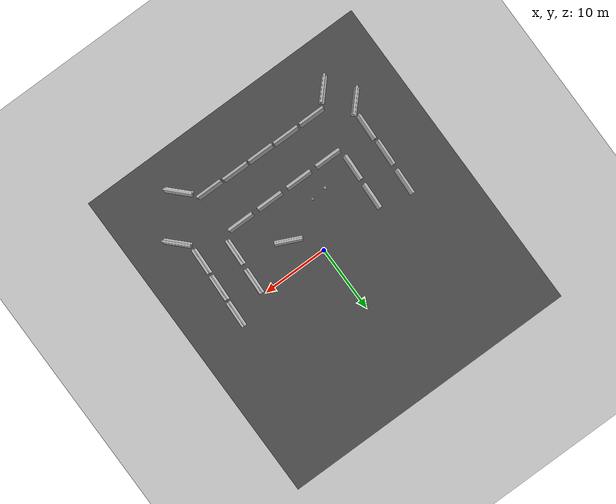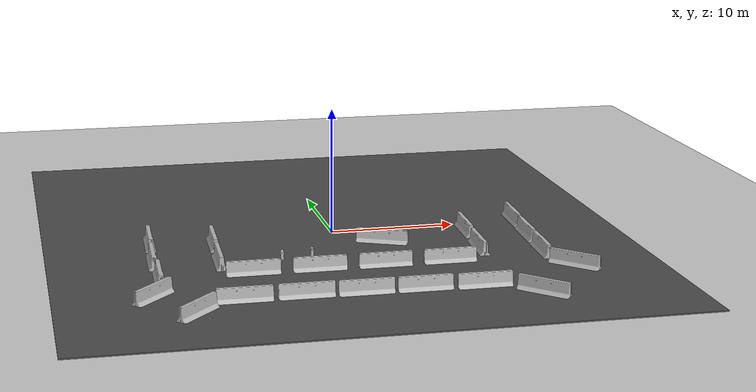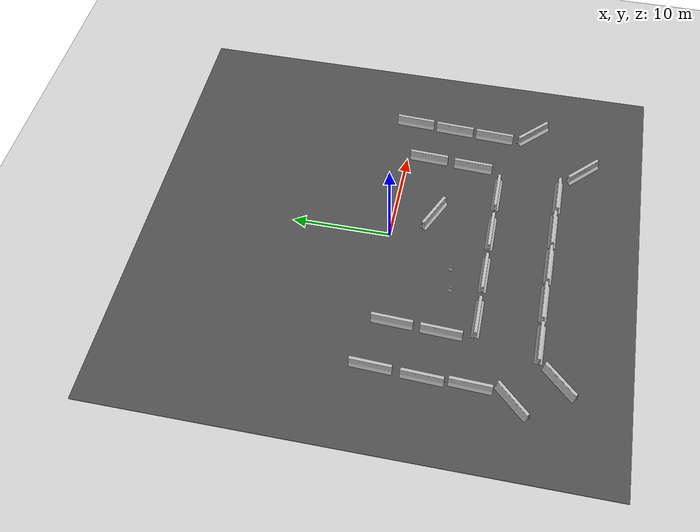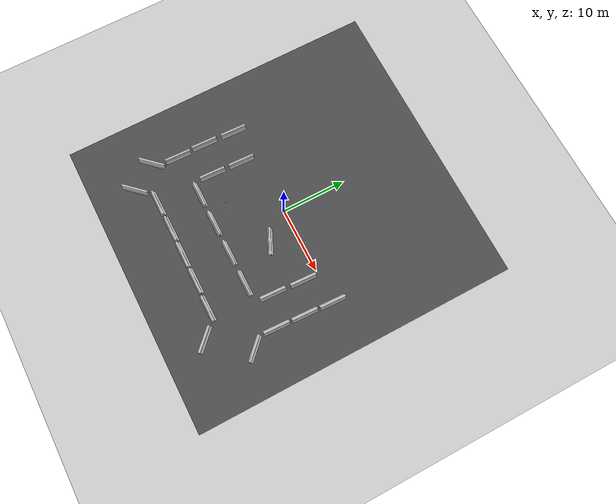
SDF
<sdf version="1.6">
 <world name="default">
  <model name="ground_plane">
   <static>1</static>
   <link name="link">
    <collision name="collision">
     <geometry><plane><normal>0 0 1</normal><size>100 100</size></plane></geometry>
     <surface><friction><ode><mu>100</mu><mu2>50</mu2></ode></friction></surface>
    </collision>
    <visual name="visual">
     <cast_shadows>0</cast_shadows>
     <geometry><plane><normal>0 0 1</normal><size>100 100</size></plane></geometry>
     <material>
      <script><uri>file://media/materials/scripts/gazebo.material</uri><name>Gazebo/Grey</name></script>
     </material>
    </visual>
    <velocity_decay><linear>0</linear><angular>0</angular></velocity_decay>
   </link>
  </model>
  <model name="jersey_barrier">
   <static>1</static>
   <link name="link">
    <visual name="visual">
     <geometry><mesh><uri>model://jersey_barrier/meshes/jersey_barrier.dae</uri></mesh></geometry>
    </visual>
    <collision name="upright">
     <pose>0 0 0.5715 0 -0 0</pose>
     <geometry><box><size>4.06542 0.3063 1.143</size></box></geometry>
    </collision>
    <collision name="base">
     <pose>0 0 0.032258 0 -0 0</pose>
     <geometry><box><size>4.06542 0.8107 0.064516</size></box></geometry>
    </collision>
    <collision name="base2">
     <pose>0 0 0.1 0 -0 0</pose>
     <geometry><box><size>4.06542 0.65 0.1</size></box></geometry>
    </collision>
    <collision name="base3">
     <pose>0 0 0.2 0 -0 0</pose>
     <geometry><box><size>4.06542 0.5 0.1</size></box></geometry>
    </collision>
    <collision name="left-angle">
     <pose>0 -0.224 0.2401 0.9 -0 0</pose>
     <geometry><box><size>4.06542 0.5 0.064516</size></box></geometry>
    </collision>
    <collision name="right-angle">
     <pose>0 0.224 0.2401 -0.9 0 0</pose>
     <geometry><box><size>4.06542 0.5 0.064516</size></box></geometry>
    </collision>
    <velocity_decay><linear>0</linear><angular>0</angular></velocity_decay>
   </link>
   <pose>-8 -10 0 0 -0 0</pose>
  </model>
  <model name="jersey_barrier_0">
   <static>1</static>
   <link name="link">
    <visual name="visual">
     <geometry><mesh><uri>model://jersey_barrier/meshes/jersey_barrier.dae</uri></mesh></geometry>
    </visual>
    <collision name="upright">
     <pose>0 0 0.5715 0 -0 0</pose>
     <geometry><box><size>4.06542 0.3063 1.143</size></box></geometry>
    </collision>
    <collision name="base">
     <pose>0 0 0.032258 0 -0 0</pose>
     <geometry><box><size>4.06542 0.8107 0.064516</size></box></geometry>
    </collision>
    <collision name="base2">
     <pose>0 0 0.1 0 -0 0</pose>
     <geometry><box><size>4.06542 0.65 0.1</size></box></geometry>
    </collision>
    <collision name="base3">
     <pose>0 0 0.2 0 -0 0</pose>
     <geometry><box><size>4.06542 0.5 0.1</size></box></geometry>
    </collision>
    <collision name="left-angle">
     <pose>0 -0.224 0.2401 0.9 -0 0</pose>
     <geometry><box><size>4.06542 0.5 0.064516</size></box></geometry>
    </collision>
    <collision name="right-angle">
     <pose>0 0.224 0.2401 -0.9 0 0</pose>
     <geometry><box><size>4.06542 0.5 0.064516</size></box></geometry>
    </collision>
    <velocity_decay><linear>0</linear><angular>0</angular></velocity_decay>
   </link>
   <pose>-3 -10 0 0 -0 0</pose>
  </model>
  <model name="jersey_barrier_1">
   <static>1</static>
   <link name="link">
    <visual name="visual">
     <geometry><mesh><uri>model://jersey_barrier/meshes/jersey_barrier.dae</uri></mesh></geometry>
    </visual>
    <collision name="upright">
     <pose>0 0 0.5715 0 -0 0</pose>
     <geometry><box><size>4.06542 0.3063 1.143</size></box></geometry>
    </collision>
    <collision name="base">
     <pose>0 0 0.032258 0 -0 0</pose>
     <geometry><box><size>4.06542 0.8107 0.064516</size></box></geometry>
    </collision>
    <collision name="base2">
     <pose>0 0 0.1 0 -0 0</pose>
     <geometry><box><size>4.06542 0.65 0.1</size></box></geometry>
    </collision>
    <collision name="base3">
     <pose>0 0 0.2 0 -0 0</pose>
     <geometry><box><size>4.06542 0.5 0.1</size></box></geometry>
    </collision>
    <collision name="left-angle">
     <pose>0 -0.224 0.2401 0.9 -0 0</pose>
     <geometry><box><size>4.06542 0.5 0.064516</size></box></geometry>
    </collision>
    <collision name="right-angle">
     <pose>0 0.224 0.2401 -0.9 0 0</pose>
     <geometry><box><size>4.06542 0.5 0.064516</size></box></geometry>
    </collision>
    <velocity_decay><linear>0</linear><angular>0</angular></velocity_decay>
   </link>
   <pose>2 -10 0 0 -0 0</pose>
  </model>
  <model name="jersey_barrier_2">
   <static>1</static>
   <link name="link">
    <visual name="visual">
     <geometry><mesh><uri>model://jersey_barrier/meshes/jersey_barrier.dae</uri></mesh></geometry>
    </visual>
    <collision name="upright">
     <pose>0 0 0.5715 0 -0 0</pose>
     <geometry><box><size>4.06542 0.3063 1.143</size></box></geometry>
    </collision>
    <collision name="base">
     <pose>0 0 0.032258 0 -0 0</pose>
     <geometry><box><size>4.06542 0.8107 0.064516</size></box></geometry>
    </collision>
    <collision name="base2">
     <pose>0 0 0.1 0 -0 0</pose>
     <geometry><box><size>4.06542 0.65 0.1</size></box></geometry>
    </collision>
    <collision name="base3">
     <pose>0 0 0.2 0 -0 0</pose>
     <geometry><box><size>4.06542 0.5 0.1</size></box></geometry>
    </collision>
    <collision name="left-angle">
     <pose>0 -0.224 0.2401 0.9 -0 0</pose>
     <geometry><box><size>4.06542 0.5 0.064516</size></box></geometry>
    </collision>
    <collision name="right-angle">
     <pose>0 0.224 0.2401 -0.9 0 0</pose>
     <geometry><box><size>4.06542 0.5 0.064516</size></box></geometry>
    </collision>
    <velocity_decay><linear>0</linear><angular>0</angular></velocity_decay>
   </link>
   <pose>7 -10 0 0 -0 0</pose>
  </model>
  <model name="asphalt_plane">
   <static>1</static>
   <link name="link">
    <collision name="collision"><geometry><box><size>45.6368 49.6066 0.1</size></box></geometry></collision>
    <visual name="visual">
     <cast_shadows>0</cast_shadows>
     <geometry><box><size>45.6368 49.6066 0.1</size></box></geometry>
     <material>
      <script>
       <uri>model://asphalt_plane/materials/scripts</uri>
       <uri>model://asphalt_plane/materials/textures</uri>
       <name>vrc/asphalt</name>
      </script>
     </material>
    </visual>
    <velocity_decay><linear>0</linear><angular>0</angular></velocity_decay>
   </link>
   <pose>-0.123803 0.022176 0 0 -0 0</pose>
  </model>
  <model name="jersey_barrier_7">
   <static>1</static>
   <link name="link">
    <visual name="visual">
     <geometry><mesh><uri>model://jersey_barrier/meshes/jersey_barrier.dae</uri></mesh></geometry>
    </visual>
    <collision name="upright">
     <pose>0 0 0.5715 0 -0 0</pose>
     <geometry><box><size>4.06542 0.3063 1.143</size></box></geometry>
    </collision>
    <collision name="base">
     <pose>0 0 0.032258 0 -0 0</pose>
     <geometry><box><size>4.06542 0.8107 0.064516</size></box></geometry>
    </collision>
    <collision name="base2">
     <pose>0 0 0.1 0 -0 0</pose>
     <geometry><box><size>4.06542 0.65 0.1</size></box></geometry>
    </collision>
    <collision name="base3">
     <pose>0 0 0.2 0 -0 0</pose>
     <geometry><box><size>4.06542 0.5 0.1</size></box></geometry>
    </collision>
    <collision name="left-angle">
     <pose>0 -0.224 0.2401 0.9 -0 0</pose>
     <geometry><box><size>4.06542 0.5 0.064516</size></box></geometry>
    </collision>
    <collision name="right-angle">
     <pose>0 0.224 0.2401 -0.9 0 0</pose>
     <geometry><box><size>4.06542 0.5 0.064516</size></box></geometry>
    </collision>
   </link>
   <pose>10.1442 -7.0827 0 0 -0 1.5316</pose>
  </model>
  <model name="jersey_barrier_7_clone">
   <static>1</static>
   <link name="link">
    <visual name="visual">
     <geometry><mesh><uri>model://jersey_barrier/meshes/jersey_barrier.dae</uri></mesh></geometry>
    </visual>
    <collision name="upright">
     <pose>0 0 0.5715 0 -0 0</pose>
     <geometry><box><size>4.06542 0.3063 1.143</size></box></geometry>
    </collision>
    <collision name="base">
     <pose>0 0 0.032258 0 -0 0</pose>
     <geometry><box><size>4.06542 0.8107 0.064516</size></box></geometry>
    </collision>
    <collision name="base2">
     <pose>0 0 0.1 0 -0 0</pose>
     <geometry><box><size>4.06542 0.65 0.1</size></box></geometry>
    </collision>
    <collision name="base3">
     <pose>0 0 0.2 0 -0 0</pose>
     <geometry><box><size>4.06542 0.5 0.1</size></box></geometry>
    </collision>
    <collision name="left-angle">
     <pose>0 -0.224 0.2401 0.9 -0 0</pose>
     <geometry><box><size>4.06542 0.5 0.064516</size></box></geometry>
    </collision>
    <collision name="right-angle">
     <pose>0 0.224 0.2401 -0.9 0 0</pose>
     <geometry><box><size>4.06542 0.5 0.064516</size></box></geometry>
    </collision>
   </link>
   <pose>10.4384 -2.30893 0 0 -0 1.5316</pose>
  </model>
  <model name="jersey_barrier_7_clone_1_clone_0">
   <static>1</static>
   <link name="link">
    <visual name="visual">
     <geometry><mesh><uri>model://jersey_barrier/meshes/jersey_barrier.dae</uri></mesh></geometry>
    </visual>
    <collision name="upright">
     <pose>0 0 0.5715 0 -0 0</pose>
     <geometry><box><size>4.06542 0.3063 1.143</size></box></geometry>
    </collision>
    <collision name="base">
     <pose>0 0 0.032258 0 -0 0</pose>
     <geometry><box><size>4.06542 0.8107 0.064516</size></box></geometry>
    </collision>
    <collision name="base2">
     <pose>0 0 0.1 0 -0 0</pose>
     <geometry><box><size>4.06542 0.65 0.1</size></box></geometry>
    </collision>
    <collision name="base3">
     <pose>0 0 0.2 0 -0 0</pose>
     <geometry><box><size>4.06542 0.5 0.1</size></box></geometry>
    </collision>
    <collision name="left-angle">
     <pose>0 -0.224 0.2401 0.9 -0 0</pose>
     <geometry><box><size>4.06542 0.5 0.064516</size></box></geometry>
    </collision>
    <collision name="right-angle">
     <pose>0 0.224 0.2401 -0.9 0 0</pose>
     <geometry><box><size>4.06542 0.5 0.064516</size></box></geometry>
    </collision>
   </link>
   <pose>-10.0917 -6.86582 0 0 -0 1.5316</pose>
  </model>
  <model name="jersey_barrier_7_clone_1_clone_3">
   <static>1</static>
   <link name="link">
    <visual name="visual">
     <geometry><mesh><uri>model://jersey_barrier/meshes/jersey_barrier.dae</uri></mesh></geometry>
    </visual>
    <collision name="upright">
     <pose>0 0 0.5715 0 -0 0</pose>
     <geometry><box><size>4.06542 0.3063 1.143</size></box></geometry>
    </collision>
    <collision name="base">
     <pose>0 0 0.032258 0 -0 0</pose>
     <geometry><box><size>4.06542 0.8107 0.064516</size></box></geometry>
    </collision>
    <collision name="base2">
     <pose>0 0 0.1 0 -0 0</pose>
     <geometry><box><size>4.06542 0.65 0.1</size></box></geometry>
    </collision>
    <collision name="base3">
     <pose>0 0 0.2 0 -0 0</pose>
     <geometry><box><size>4.06542 0.5 0.1</size></box></geometry>
    </collision>
    <collision name="left-angle">
     <pose>0 -0.224 0.2401 0.9 -0 0</pose>
     <geometry><box><size>4.06542 0.5 0.064516</size></box></geometry>
    </collision>
    <collision name="right-angle">
     <pose>0 0.224 0.2401 -0.9 0 0</pose>
     <geometry><box><size>4.06542 0.5 0.064516</size></box></geometry>
    </collision>
   </link>
   <pose>-14.7486 -1.06823 0 0 -0 1.5316</pose>
  </model>
  <model name="jersey_barrier_7_clone_1_clone_4">
   <static>1</static>
   <link name="link">
    <visual name="visual">
     <geometry><mesh><uri>model://jersey_barrier/meshes/jersey_barrier.dae</uri></mesh></geometry>
    </visual>
    <collision name="upright">
     <pose>0 0 0.5715 0 -0 0</pose>
     <geometry><box><size>4.06542 0.3063 1.143</size></box></geometry>
    </collision>
    <collision name="base">
     <pose>0 0 0.032258 0 -0 0</pose>
     <geometry><box><size>4.06542 0.8107 0.064516</size></box></geometry>
    </collision>
    <collision name="base2">
     <pose>0 0 0.1 0 -0 0</pose>
     <geometry><box><size>4.06542 0.65 0.1</size></box></geometry>
    </collision>
    <collision name="base3">
     <pose>0 0 0.2 0 -0 0</pose>
     <geometry><box><size>4.06542 0.5 0.1</size></box></geometry>
    </collision>
    <collision name="left-angle">
     <pose>0 -0.224 0.2401 0.9 -0 0</pose>
     <geometry><box><size>4.06542 0.5 0.064516</size></box></geometry>
    </collision>
    <collision name="right-angle">
     <pose>0 0.224 0.2401 -0.9 0 0</pose>
     <geometry><box><size>4.06542 0.5 0.064516</size></box></geometry>
    </collision>
   </link>
   <pose>-14.9922 -5.87235 0 0 -0 1.5316</pose>
  </model>
  <model name="jersey_barrier_7_clone_1_clone_5">
   <static>1</static>
   <link name="link">
    <visual name="visual">
     <geometry><mesh><uri>model://jersey_barrier/meshes/jersey_barrier.dae</uri></mesh></geometry>
    </visual>
    <collision name="upright">
     <pose>0 0 0.5715 0 -0 0</pose>
     <geometry><box><size>4.06542 0.3063 1.143</size></box></geometry>
    </collision>
    <collision name="base">
     <pose>0 0 0.032258 0 -0 0</pose>
     <geometry><box><size>4.06542 0.8107 0.064516</size></box></geometry>
    </collision>
    <collision name="base2">
     <pose>0 0 0.1 0 -0 0</pose>
     <geometry><box><size>4.06542 0.65 0.1</size></box></geometry>
    </collision>
    <collision name="base3">
     <pose>0 0 0.2 0 -0 0</pose>
     <geometry><box><size>4.06542 0.5 0.1</size></box></geometry>
    </collision>
    <collision name="left-angle">
     <pose>0 -0.224 0.2401 0.9 -0 0</pose>
     <geometry><box><size>4.06542 0.5 0.064516</size></box></geometry>
    </collision>
    <collision name="right-angle">
     <pose>0 0.224 0.2401 -0.9 0 0</pose>
     <geometry><box><size>4.06542 0.5 0.064516</size></box></geometry>
    </collision>
   </link>
   <pose>-14.959 -10.2795 0 0 -0 1.5316</pose>
  </model>
  <model name="jersey_barrier_7_clone_2">
   <static>1</static>
   <link name="link">
    <visual name="visual">
     <geometry><mesh><uri>model://jersey_barrier/meshes/jersey_barrier.dae</uri></mesh></geometry>
    </visual>
    <collision name="upright">
     <pose>0 0 0.5715 0 -0 0</pose>
     <geometry><box><size>4.06542 0.3063 1.143</size></box></geometry>
    </collision>
    <collision name="base">
     <pose>0 0 0.032258 0 -0 0</pose>
     <geometry><box><size>4.06542 0.8107 0.064516</size></box></geometry>
    </collision>
    <collision name="base2">
     <pose>0 0 0.1 0 -0 0</pose>
     <geometry><box><size>4.06542 0.65 0.1</size></box></geometry>
    </collision>
    <collision name="base3">
     <pose>0 0 0.2 0 -0 0</pose>
     <geometry><box><size>4.06542 0.5 0.1</size></box></geometry>
    </collision>
    <collision name="left-angle">
     <pose>0 -0.224 0.2401 0.9 -0 0</pose>
     <geometry><box><size>4.06542 0.5 0.064516</size></box></geometry>
    </collision>
    <collision name="right-angle">
     <pose>0 0.224 0.2401 -0.9 0 0</pose>
     <geometry><box><size>4.06542 0.5 0.064516</size></box></geometry>
    </collision>
   </link>
   <pose>14.6825 -8.81262 0 0 -0 1.5316</pose>
  </model>
  <model name="jersey_barrier_7_clone_3">
   <static>1</static>
   <link name="link">
    <visual name="visual">
     <geometry><mesh><uri>model://jersey_barrier/meshes/jersey_barrier.dae</uri></mesh></geometry>
    </visual>
    <collision name="upright">
     <pose>0 0 0.5715 0 -0 0</pose>
     <geometry><box><size>4.06542 0.3063 1.143</size></box></geometry>
    </collision>
    <collision name="base">
     <pose>0 0 0.032258 0 -0 0</pose>
     <geometry><box><size>4.06542 0.8107 0.064516</size></box></geometry>
    </collision>
    <collision name="base2">
     <pose>0 0 0.1 0 -0 0</pose>
     <geometry><box><size>4.06542 0.65 0.1</size></box></geometry>
    </collision>
    <collision name="base3">
     <pose>0 0 0.2 0 -0 0</pose>
     <geometry><box><size>4.06542 0.5 0.1</size></box></geometry>
    </collision>
    <collision name="left-angle">
     <pose>0 -0.224 0.2401 0.9 -0 0</pose>
     <geometry><box><size>4.06542 0.5 0.064516</size></box></geometry>
    </collision>
    <collision name="right-angle">
     <pose>0 0.224 0.2401 -0.9 0 0</pose>
     <geometry><box><size>4.06542 0.5 0.064516</size></box></geometry>
    </collision>
   </link>
   <pose>14.8943 -4.42382 0 0 -0 1.5316</pose>
  </model>
  <model name="jersey_barrier_7_clone_4">
   <static>1</static>
   <link name="link">
    <visual name="visual">
     <geometry><mesh><uri>model://jersey_barrier/meshes/jersey_barrier.dae</uri></mesh></geometry>
    </visual>
    <collision name="upright">
     <pose>0 0 0.5715 0 -0 0</pose>
     <geometry><box><size>4.06542 0.3063 1.143</size></box></geometry>
    </collision>
    <collision name="base">
     <pose>0 0 0.032258 0 -0 0</pose>
     <geometry><box><size>4.06542 0.8107 0.064516</size></box></geometry>
    </collision>
    <collision name="base2">
     <pose>0 0 0.1 0 -0 0</pose>
     <geometry><box><size>4.06542 0.65 0.1</size></box></geometry>
    </collision>
    <collision name="base3">
     <pose>0 0 0.2 0 -0 0</pose>
     <geometry><box><size>4.06542 0.5 0.1</size></box></geometry>
    </collision>
    <collision name="left-angle">
     <pose>0 -0.224 0.2401 0.9 -0 0</pose>
     <geometry><box><size>4.06542 0.5 0.064516</size></box></geometry>
    </collision>
    <collision name="right-angle">
     <pose>0 0.224 0.2401 -0.9 0 0</pose>
     <geometry><box><size>4.06542 0.5 0.064516</size></box></geometry>
    </collision>
   </link>
   <pose>15.1542 -0.062521 0 0 -0 1.5316</pose>
  </model>
  <model name="jersey_barrier_clone">
   <static>1</static>
   <link name="link">
    <visual name="visual">
     <geometry><mesh><uri>model://jersey_barrier/meshes/jersey_barrier.dae</uri></mesh></geometry>
    </visual>
    <collision name="upright">
     <pose>0 0 0.5715 0 -0 0</pose>
     <geometry><box><size>4.06542 0.3063 1.143</size></box></geometry>
    </collision>
    <collision name="base">
     <pose>0 0 0.032258 0 -0 0</pose>
     <geometry><box><size>4.06542 0.8107 0.064516</size></box></geometry>
    </collision>
    <collision name="base2">
     <pose>0 0 0.1 0 -0 0</pose>
     <geometry><box><size>4.06542 0.65 0.1</size></box></geometry>
    </collision>
    <collision name="base3">
     <pose>0 0 0.2 0 -0 0</pose>
     <geometry><box><size>4.06542 0.5 0.1</size></box></geometry>
    </collision>
    <collision name="left-angle">
     <pose>0 -0.224 0.2401 0.9 -0 0</pose>
     <geometry><box><size>4.06542 0.5 0.064516</size></box></geometry>
    </collision>
    <collision name="right-angle">
     <pose>0 0.224 0.2401 -0.9 0 0</pose>
     <geometry><box><size>4.06542 0.5 0.064516</size></box></geometry>
    </collision>
    <velocity_decay><linear>0</linear><angular>0</angular></velocity_decay>
   </link>
   <pose>-9.60671 -16.051 0 0 -0 0</pose>
  </model>
  <model name="jersey_barrier_clone_0">
   <static>1</static>
   <link name="link">
    <visual name="visual">
     <geometry><mesh><uri>model://jersey_barrier/meshes/jersey_barrier.dae</uri></mesh></geometry>
    </visual>
    <collision name="upright">
     <pose>0 0 0.5715 0 -0 0</pose>
     <geometry><box><size>4.06542 0.3063 1.143</size></box></geometry>
    </collision>
    <collision name="base">
     <pose>0 0 0.032258 0 -0 0</pose>
     <geometry><box><size>4.06542 0.8107 0.064516</size></box></geometry>
    </collision>
    <collision name="base2">
     <pose>0 0 0.1 0 -0 0</pose>
     <geometry><box><size>4.06542 0.65 0.1</size></box></geometry>
    </collision>
    <collision name="base3">
     <pose>0 0 0.2 0 -0 0</pose>
     <geometry><box><size>4.06542 0.5 0.1</size></box></geometry>
    </collision>
    <collision name="left-angle">
     <pose>0 -0.224 0.2401 0.9 -0 0</pose>
     <geometry><box><size>4.06542 0.5 0.064516</size></box></geometry>
    </collision>
    <collision name="right-angle">
     <pose>0 0.224 0.2401 -0.9 0 0</pose>
     <geometry><box><size>4.06542 0.5 0.064516</size></box></geometry>
    </collision>
    <velocity_decay><linear>0</linear><angular>0</angular></velocity_decay>
   </link>
   <pose>-5.17894 -16.0195 0 0 -0 0</pose>
  </model>
  <model name="jersey_barrier_clone_1">
   <static>1</static>
   <link name="link">
    <visual name="visual">
     <geometry><mesh><uri>model://jersey_barrier/meshes/jersey_barrier.dae</uri></mesh></geometry>
    </visual>
    <collision name="upright">
     <pose>0 0 0.5715 0 -0 0</pose>
     <geometry><box><size>4.06542 0.3063 1.143</size></box></geometry>
    </collision>
    <collision name="base">
     <pose>0 0 0.032258 0 -0 0</pose>
     <geometry><box><size>4.06542 0.8107 0.064516</size></box></geometry>
    </collision>
    <collision name="base2">
     <pose>0 0 0.1 0 -0 0</pose>
     <geometry><box><size>4.06542 0.65 0.1</size></box></geometry>
    </collision>
    <collision name="base3">
     <pose>0 0 0.2 0 -0 0</pose>
     <geometry><box><size>4.06542 0.5 0.1</size></box></geometry>
    </collision>
    <collision name="left-angle">
     <pose>0 -0.224 0.2401 0.9 -0 0</pose>
     <geometry><box><size>4.06542 0.5 0.064516</size></box></geometry>
    </collision>
    <collision name="right-angle">
     <pose>0 0.224 0.2401 -0.9 0 0</pose>
     <geometry><box><size>4.06542 0.5 0.064516</size></box></geometry>
    </collision>
    <velocity_decay><linear>0</linear><angular>0</angular></velocity_decay>
   </link>
   <pose>-0.872675 -16.1021 0 0 -0 0</pose>
  </model>
  <model name="jersey_barrier_clone_2">
   <static>1</static>
   <link name="link">
    <visual name="visual">
     <geometry><mesh><uri>model://jersey_barrier/meshes/jersey_barrier.dae</uri></mesh></geometry>
    </visual>
    <collision name="upright">
     <pose>0 0 0.5715 0 -0 0</pose>
     <geometry><box><size>4.06542 0.3063 1.143</size></box></geometry>
    </collision>
    <collision name="base">
     <pose>0 0 0.032258 0 -0 0</pose>
     <geometry><box><size>4.06542 0.8107 0.064516</size></box></geometry>
    </collision>
    <collision name="base2">
     <pose>0 0 0.1 0 -0 0</pose>
     <geometry><box><size>4.06542 0.65 0.1</size></box></geometry>
    </collision>
    <collision name="base3">
     <pose>0 0 0.2 0 -0 0</pose>
     <geometry><box><size>4.06542 0.5 0.1</size></box></geometry>
    </collision>
    <collision name="left-angle">
     <pose>0 -0.224 0.2401 0.9 -0 0</pose>
     <geometry><box><size>4.06542 0.5 0.064516</size></box></geometry>
    </collision>
    <collision name="right-angle">
     <pose>0 0.224 0.2401 -0.9 0 0</pose>
     <geometry><box><size>4.06542 0.5 0.064516</size></box></geometry>
    </collision>
    <velocity_decay><linear>0</linear><angular>0</angular></velocity_decay>
   </link>
   <pose>3.43298 -16.132 0 0 -0 0</pose>
  </model>
  <model name="jersey_barrier_clone_3">
   <static>1</static>
   <link name="link">
    <visual name="visual">
     <geometry><mesh><uri>model://jersey_barrier/meshes/jersey_barrier.dae</uri></mesh></geometry>
    </visual>
    <collision name="upright">
     <pose>0 0 0.5715 0 -0 0</pose>
     <geometry><box><size>4.06542 0.3063 1.143</size></box></geometry>
    </collision>
    <collision name="base">
     <pose>0 0 0.032258 0 -0 0</pose>
     <geometry><box><size>4.06542 0.8107 0.064516</size></box></geometry>
    </collision>
    <collision name="base2">
     <pose>0 0 0.1 0 -0 0</pose>
     <geometry><box><size>4.06542 0.65 0.1</size></box></geometry>
    </collision>
    <collision name="base3">
     <pose>0 0 0.2 0 -0 0</pose>
     <geometry><box><size>4.06542 0.5 0.1</size></box></geometry>
    </collision>
    <collision name="left-angle">
     <pose>0 -0.224 0.2401 0.9 -0 0</pose>
     <geometry><box><size>4.06542 0.5 0.064516</size></box></geometry>
    </collision>
    <collision name="right-angle">
     <pose>0 0.224 0.2401 -0.9 0 0</pose>
     <geometry><box><size>4.06542 0.5 0.064516</size></box></geometry>
    </collision>
    <velocity_decay><linear>0</linear><angular>0</angular></velocity_decay>
   </link>
   <pose>7.80452 -16.2737 0 0 -0 0</pose>
  </model>
  <model name="jersey_barrier_clone_4">
   <static>1</static>
   <link name="link">
    <visual name="visual">
     <geometry><mesh><uri>model://jersey_barrier/meshes/jersey_barrier.dae</uri></mesh></geometry>
    </visual>
    <collision name="upright">
     <pose>0 0 0.5715 0 -0 0</pose>
     <geometry><box><size>4.06542 0.3063 1.143</size></box></geometry>
    </collision>
    <collision name="base">
     <pose>0 0 0.032258 0 -0 0</pose>
     <geometry><box><size>4.06542 0.8107 0.064516</size></box></geometry>
    </collision>
    <collision name="base2">
     <pose>0 0 0.1 0 -0 0</pose>
     <geometry><box><size>4.06542 0.65 0.1</size></box></geometry>
    </collision>
    <collision name="base3">
     <pose>0 0 0.2 0 -0 0</pose>
     <geometry><box><size>4.06542 0.5 0.1</size></box></geometry>
    </collision>
    <collision name="left-angle">
     <pose>0 -0.224 0.2401 0.9 -0 0</pose>
     <geometry><box><size>4.06542 0.5 0.064516</size></box></geometry>
    </collision>
    <collision name="right-angle">
     <pose>0 0.224 0.2401 -0.9 0 0</pose>
     <geometry><box><size>4.06542 0.5 0.064516</size></box></geometry>
    </collision>
    <velocity_decay><linear>0</linear><angular>0</angular></velocity_decay>
   </link>
   <pose>11.4908 -18.5483 0 0 0 -0.792377</pose>
  </model>
  <model name="jersey_barrier_clone_4_clone">
   <static>1</static>
   <link name="link">
    <visual name="visual">
     <geometry><mesh><uri>model://jersey_barrier/meshes/jersey_barrier.dae</uri></mesh></geometry>
    </visual>
    <collision name="upright">
     <pose>0 0 0.5715 0 -0 0</pose>
     <geometry><box><size>4.06542 0.3063 1.143</size></box></geometry>
    </collision>
    <collision name="base">
     <pose>0 0 0.032258 0 -0 0</pose>
     <geometry><box><size>4.06542 0.8107 0.064516</size></box></geometry>
    </collision>
    <collision name="base2">
     <pose>0 0 0.1 0 -0 0</pose>
     <geometry><box><size>4.06542 0.65 0.1</size></box></geometry>
    </collision>
    <collision name="base3">
     <pose>0 0 0.2 0 -0 0</pose>
     <geometry><box><size>4.06542 0.5 0.1</size></box></geometry>
    </collision>
    <collision name="left-angle">
     <pose>0 -0.224 0.2401 0.9 -0 0</pose>
     <geometry><box><size>4.06542 0.5 0.064516</size></box></geometry>
    </collision>
    <collision name="right-angle">
     <pose>0 0.224 0.2401 -0.9 0 0</pose>
     <geometry><box><size>4.06542 0.5 0.064516</size></box></geometry>
    </collision>
    <velocity_decay><linear>0</linear><angular>0</angular></velocity_decay>
   </link>
   <pose>15.8712 -12.8663 0 0 0 -0.792377</pose>
  </model>
  <model name="jersey_barrier_clone_4_clone_2">
   <static>1</static>
   <link name="link">
    <visual name="visual">
     <geometry><mesh><uri>model://jersey_barrier/meshes/jersey_barrier.dae</uri></mesh></geometry>
    </visual>
    <collision name="upright">
     <pose>0 0 0.5715 0 -0 0</pose>
     <geometry><box><size>4.06542 0.3063 1.143</size></box></geometry>
    </collision>
    <collision name="base">
     <pose>0 0 0.032258 0 -0 0</pose>
     <geometry><box><size>4.06542 0.8107 0.064516</size></box></geometry>
    </collision>
    <collision name="base2">
     <pose>0 0 0.1 0 -0 0</pose>
     <geometry><box><size>4.06542 0.65 0.1</size></box></geometry>
    </collision>
    <collision name="base3">
     <pose>0 0 0.2 0 -0 0</pose>
     <geometry><box><size>4.06542 0.5 0.1</size></box></geometry>
    </collision>
    <collision name="left-angle">
     <pose>0 -0.224 0.2401 0.9 -0 0</pose>
     <geometry><box><size>4.06542 0.5 0.064516</size></box></geometry>
    </collision>
    <collision name="right-angle">
     <pose>0 0.224 0.2401 -0.9 0 0</pose>
     <geometry><box><size>4.06542 0.5 0.064516</size></box></geometry>
    </collision>
    <velocity_decay><linear>0</linear><angular>0</angular></velocity_decay>
   </link>
   <pose>-15.8045 -14.1655 0 0 -0 0.826051</pose>
  </model>
  <model name="jersey_barrier_clone_4_clone_2_clone">
   <static>1</static>
   <link name="link">
    <visual name="visual">
     <geometry><mesh><uri>model://jersey_barrier/meshes/jersey_barrier.dae</uri></mesh></geometry>
    </visual>
    <collision name="upright">
     <pose>0 0 0.5715 0 -0 0</pose>
     <geometry><box><size>4.06542 0.3063 1.143</size></box></geometry>
    </collision>
    <collision name="base">
     <pose>0 0 0.032258 0 -0 0</pose>
     <geometry><box><size>4.06542 0.8107 0.064516</size></box></geometry>
    </collision>
    <collision name="base2">
     <pose>0 0 0.1 0 -0 0</pose>
     <geometry><box><size>4.06542 0.65 0.1</size></box></geometry>
    </collision>
    <collision name="base3">
     <pose>0 0 0.2 0 -0 0</pose>
     <geometry><box><size>4.06542 0.5 0.1</size></box></geometry>
    </collision>
    <collision name="left-angle">
     <pose>0 -0.224 0.2401 0.9 -0 0</pose>
     <geometry><box><size>4.06542 0.5 0.064516</size></box></geometry>
    </collision>
    <collision name="right-angle">
     <pose>0 0.224 0.2401 -0.9 0 0</pose>
     <geometry><box><size>4.06542 0.5 0.064516</size></box></geometry>
    </collision>
    <velocity_decay><linear>0</linear><angular>0</angular></velocity_decay>
   </link>
   <pose>-13.1592 -18.1667 0 0 -0 0.826051</pose>
  </model>
  <model name="jersey_barrier_7_clone_1_clone_clone_0">
   <static>1</static>
   <link name="link">
    <visual name="visual">
     <geometry><mesh><uri>model://jersey_barrier/meshes/jersey_barrier.dae</uri></mesh></geometry>
    </visual>
    <collision name="upright">
     <pose>0 0 0.5715 0 -0 0</pose>
     <geometry><box><size>4.06542 0.3063 1.143</size></box></geometry>
    </collision>
    <collision name="base">
     <pose>0 0 0.032258 0 -0 0</pose>
     <geometry><box><size>4.06542 0.8107 0.064516</size></box></geometry>
    </collision>
    <collision name="base2">
     <pose>0 0 0.1 0 -0 0</pose>
     <geometry><box><size>4.06542 0.65 0.1</size></box></geometry>
    </collision>
    <collision name="base3">
     <pose>0 0 0.2 0 -0 0</pose>
     <geometry><box><size>4.06542 0.5 0.1</size></box></geometry>
    </collision>
    <collision name="left-angle">
     <pose>0 -0.224 0.2401 0.9 -0 0</pose>
     <geometry><box><size>4.06542 0.5 0.064516</size></box></geometry>
    </collision>
    <collision name="right-angle">
     <pose>0 0.224 0.2401 -0.9 0 0</pose>
     <geometry><box><size>4.06542 0.5 0.064516</size></box></geometry>
    </collision>
   </link>
   <pose>-9.8719 -2.13548 0 0 -0 1.5316</pose>
  </model>
  <model name="fire_hydrant">
   <static>1</static>
   <link name="link">
    <collision name="collision">
     <geometry><mesh><uri>model://fire_hydrant/meshes/fire_hydrant.dae</uri></mesh></geometry>
    </collision>
    <visual name="visual">
     <geometry><mesh><uri>model://fire_hydrant/meshes/fire_hydrant.dae</uri></mesh></geometry>
    </visual>
   </link>
   <pose>-5.31556 -6.96439 0 0 -0 0</pose>
  </model>
  <model name="fire_hydrant_0">
   <static>1</static>
   <link name="link">
    <collision name="collision">
     <geometry><mesh><uri>model://fire_hydrant/meshes/fire_hydrant.dae</uri></mesh></geometry>
    </collision>
    <visual name="visual">
     <geometry><mesh><uri>model://fire_hydrant/meshes/fire_hydrant.dae</uri></mesh></geometry>
    </visual>
   </link>
   <pose>-2.95066 -6.69342 0 0 -0 0</pose>
  </model>
  <model name="jersey_barrier_8">
   <static>1</static>
   <link name="link">
    <visual name="visual">
     <geometry><mesh><uri>model://jersey_barrier/meshes/jersey_barrier.dae</uri></mesh></geometry>
    </visual>
    <collision name="upright">
     <pose>0 0 0.5715 0 -0 0</pose>
     <geometry><box><size>4.06542 0.3063 1.143</size></box></geometry>
    </collision>
    <collision name="base">
     <pose>0 0 0.032258 0 -0 0</pose>
     <geometry><box><size>4.06542 0.8107 0.064516</size></box></geometry>
    </collision>
    <collision name="base2">
     <pose>0 0 0.1 0 -0 0</pose>
     <geometry><box><size>4.06542 0.65 0.1</size></box></geometry>
    </collision>
    <collision name="base3">
     <pose>0 0 0.2 0 -0 0</pose>
     <geometry><box><size>4.06542 0.5 0.1</size></box></geometry>
    </collision>
    <collision name="left-angle">
     <pose>0 -0.224 0.2401 0.9 -0 0</pose>
     <geometry><box><size>4.06542 0.5 0.064516</size></box></geometry>
    </collision>
    <collision name="right-angle">
     <pose>0 0.224 0.2401 -0.9 0 0</pose>
     <geometry><box><size>4.06542 0.5 0.064516</size></box></geometry>
    </collision>
   </link>
   <pose>3.18929 -3.96818 0 0 -0 2.7062</pose>
  </model>
 </world>
</sdf>
